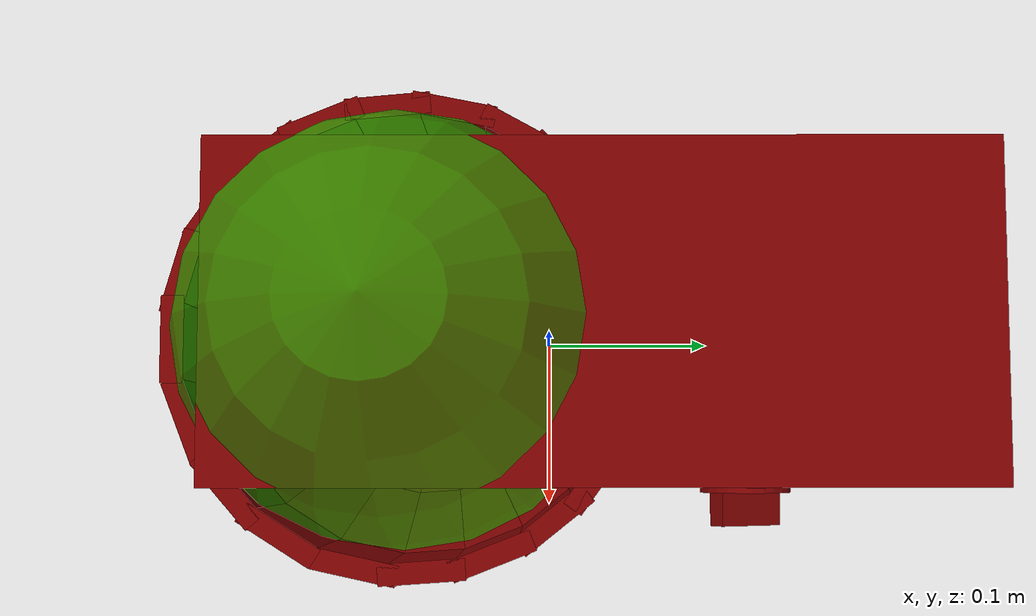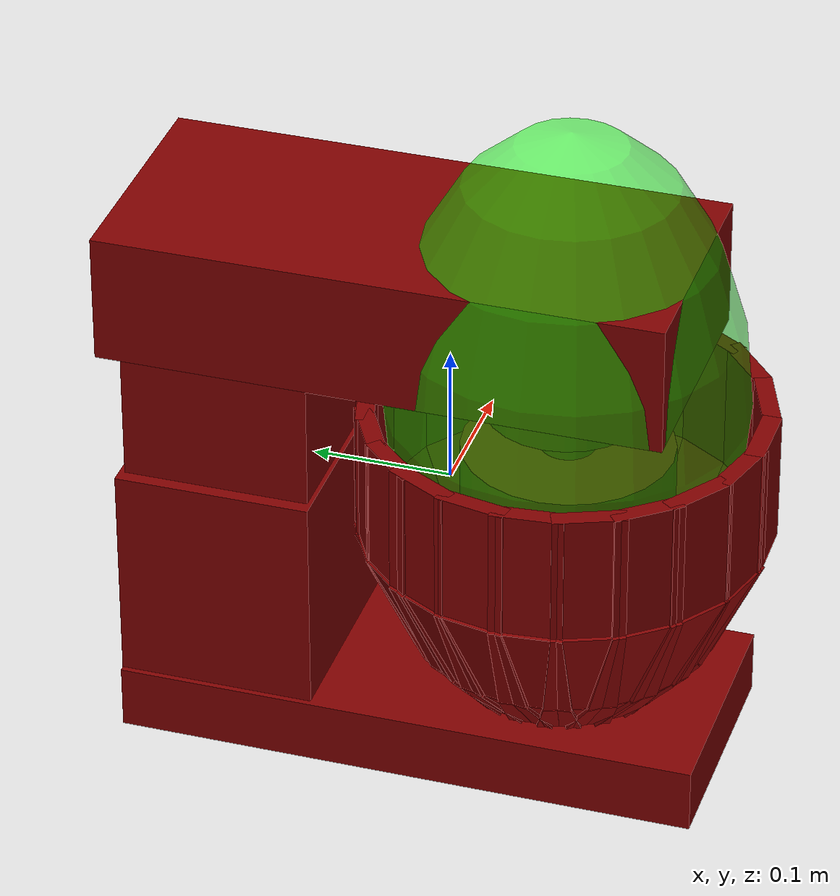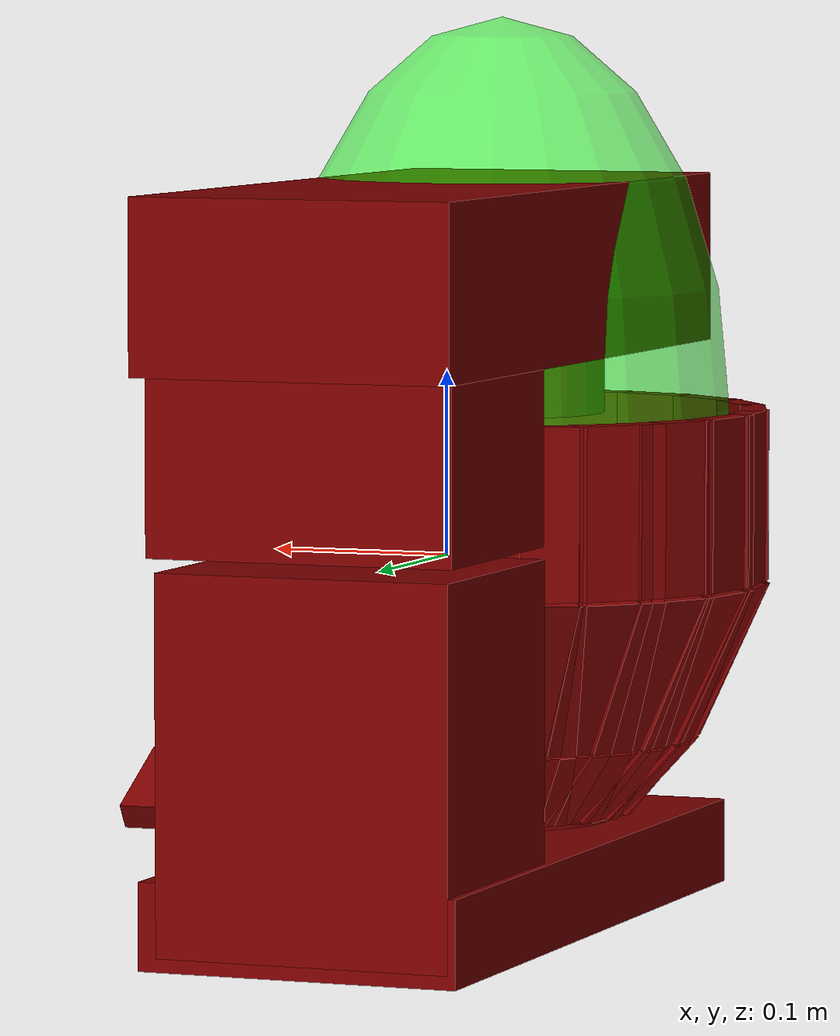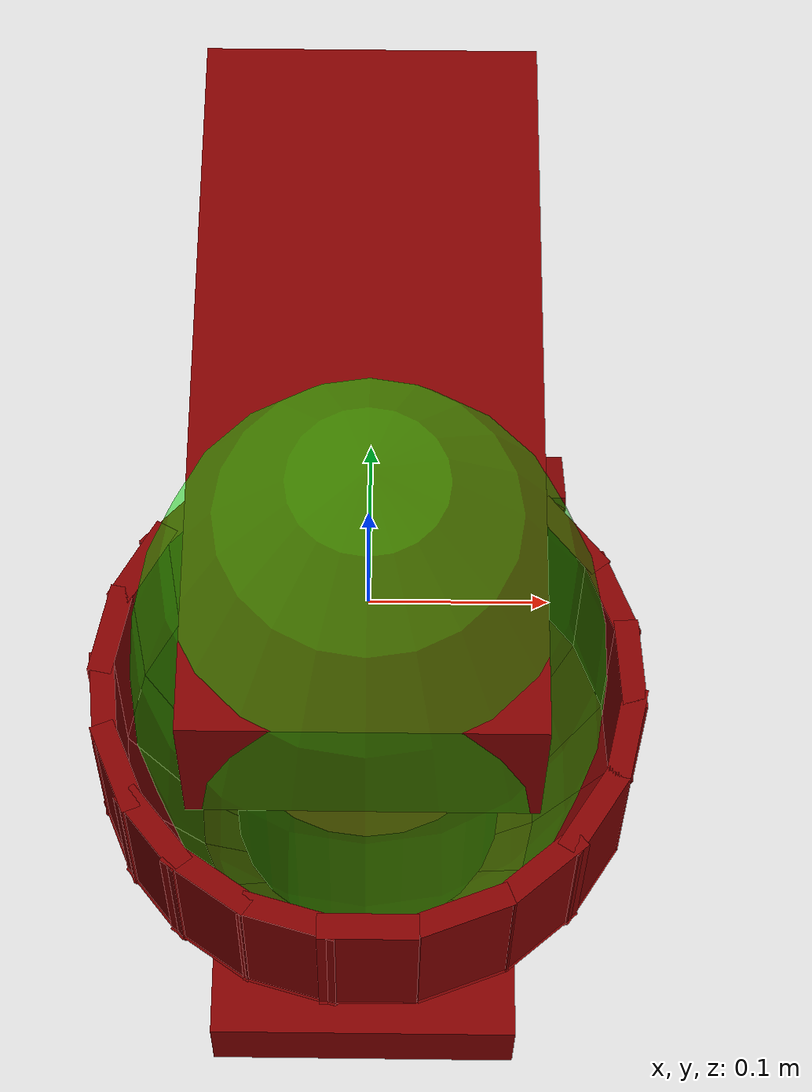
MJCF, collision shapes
<?xml version='1.0' encoding='UTF-8'?>
<mujoco model="model">
  <option timestep="0.002" gravity="0.0 0.0 -9.81"/>
  <compiler angle="radian"/>
  <asset>
    <mesh file="visuals/blender.obj" name="blender_vis"/>
    <mesh file="visuals/bowl.obj" name="bowl_vis"/>
    <mesh file="visuals/button_head_lock.obj" name="button_head_lock_vis"/>
    <mesh file="visuals/head.obj" name="head_vis"/>
    <mesh file="visuals/knob_speed.obj" name="knob_speed_vis"/>
    <mesh file="visuals/Body001.obj" name="Body001_vis"/>
    <texture file="visuals/T_BC001.png" name="Body001_material" type="2d"/>
    <material name="Body001_material" rgba="1 1 1 1.0" texture="Body001_material" shininess="0.1" specular="0.9"/>
    <material name="bowl_material" rgba="0.550000011920929 0.550000011920929 0.550000011920929 0.8367000222206116" shininess="0.1" specular="0.9"/>
    <texture file="visuals/T_BC001.png" name="head_material" type="2d"/>
    <material name="head_material" rgba="1 1 1 1.0" texture="head_material" shininess="0.1" specular="0.9"/>
    <texture file="visuals/T_BC001.png" name="blender_material" type="2d"/>
    <material name="blender_material" rgba="1 1 1 1.0" texture="blender_material" shininess="0.1" specular="0.9"/>
    <texture file="visuals/T_BC001.png" name="knob_speed_material" type="2d"/>
    <material name="knob_speed_material" rgba="1 1 1 1.0" texture="knob_speed_material" shininess="0.1" specular="0.9"/>
    <texture file="visuals/T_BC001.png" name="button_head_lock_material" type="2d"/>
    <material name="button_head_lock_material" rgba="1 1 1 1.0" texture="button_head_lock_material" shininess="0.1" specular="0.9"/>
  </asset>
  <default>
    <default class="visual">
      <geom conaffinity="0" contype="0" group="1" type="mesh"/>
    </default>
    <default class="collision">
      <geom group="0" rgba="0.5 0 0 0.5"/>
    </default>
    <default class="spawn">
      <geom group="0" rgba="1 1 1 0.5" contype="0" conaffinity="0"/>
      <site group="0" rgba="1 1 1 0.5"/>
    </default>
    <default class="region">
      <geom group="1" conaffinity="0" contype="0" rgba="0 1 0 0"/>
    </default>
  </default>
  <worldbody>
    <body>
      <body name="object">
        <geom mesh="Body001_vis" type="mesh" solimp="0.998 0.998 0.001" solref="0.001 1" friction="0.95 0.3 0.1" class="visual" material="Body001_material"/>
        <geom type="box" pos="-0.00126746 0.00839020 -0.17651898" size="0.08812396228313446 0.21000923216342926 0.02334430068731308" quat="1.0 0.0 0.0 0.0" class="collision"/>
        <geom type="box" pos="-0.00415192 0.14799933 -0.09234896" size="0.08092296123504639 0.07070896774530411 0.10016398131847382" quat="1.0 0.0 0.0 0.0" class="collision"/>
        <body name="bowl">
          <geom mesh="bowl_vis" type="mesh" solimp="0.998 0.998 0.001" solref="0.001 1" friction="0.95 0.3 0.1" class="visual" material="bowl_material"/>
          <geom type="box" pos="-0.00000143 0.05442361 0.02748097" size="0.02570570819079876 0.006458614952862263 0.046938538551330566" quat="1.0 0.0 0.0 0.0" class="collision"/>
          <geom type="box" pos="-0.00000143 0.03612551 -0.06124752" size="0.025705575942993164 0.006458582356572151 0.04693828150629997" quat="0.9767361283302307 -0.21444466710090637 4.761635417659452e-17 9.97033606715011e-25" class="collision"/>
          <geom type="box" pos="-0.00000143 -0.00226412 -0.12421586" size="0.025705575942993164 0.006458582356572151 0.028294935822486877" quat="0.9315438866615295 -0.36362892389297485 8.074186059746458e-17 2.0799648968929537e-24" class="collision"/>
          <geom type="box" pos="0.08073411 0.02841387 0.02748097" size="0.025705575942993164 0.006458581890910864 0.046938277781009674" quat="0.9518256187438965 0.0 0.0 -0.3066398501396179" class="collision"/>
          <geom type="box" pos="0.04764348 -0.01761339 -0.12421586" size="0.025705575942993164 0.006458581890910864 0.028294933959841728" quat="0.8866673111915588 -0.34611135721206665 0.11150312423706055 -0.2856484651565552" class="collision"/>
          <geom type="box" pos="0.07005285 0.01355683 -0.06124751" size="0.025705575942993164 0.006458581890910864 0.04693828150629997" quat="0.9296824932098389 -0.2041138857603073 0.06575727462768555 -0.29950621724128723" class="collision"/>
          <geom type="box" pos="0.11175636 -0.04015064 -0.06124753" size="0.025705577805638313 0.0064585828222334385 0.046938277781009674" quat="0.8067450523376465 -0.17712277173995972 0.1208885982632637 -0.550614058971405" class="collision"/>
          <geom type="box" pos="0.07600661 -0.05414057 -0.12421586" size="0.025705579668283463 0.006458581890910864 0.028294935822486877" quat="0.7694183588027954 -0.30034303665161133 0.20498785376548767 -0.5251375436782837" class="collision"/>
          <geom type="box" pos="0.12879616 -0.03348239 0.02748097" size="0.025705577805638313 0.006458582356572151 0.046938277781009674" quat="0.8259603381156921 0.0 0.0 -0.5637282133102417" class="collision"/>
          <geom type="box" pos="0.13503937 -0.11377156 0.02748097" size="0.025705577805638313 0.006458582356572151 0.046938277781009674" quat="0.6260642409324646 0.0 0.0 -0.7797715067863464" class="collision"/>
          <geom type="box" pos="0.07969095 -0.10152206 -0.12421586" size="0.025705577805638313 0.006458581425249577 0.028294933959841728" quat="0.583206295967102 -0.2276550829410553 0.2835474908351898 -0.7263913750648499" class="collision"/>
          <geom type="box" pos="0.11717357 -0.10981756 -0.06124752" size="0.025705577805638313 0.006458581425249577 0.04693828150629997" quat="0.611499547958374 -0.13425613939762115 0.16721783578395844 -0.7616310119628906" class="collision"/>
          <geom type="box" pos="0.07825549 -0.17487025 -0.06124752" size="0.025705577805638313 0.0064585828222334385 0.046938277781009674" quat="0.3396555781364441 -0.07457218319177628 0.20106098055839539 -0.9157770276069641" class="collision"/>
          <geom type="box" pos="0.05322221 -0.14576530 -0.12421586" size="0.025705577805638313 0.006458581890910864 0.028294933959841728" quat="0.3239401578903198 -0.12645037472248077 0.3409345746040344 -0.8734052181243896" class="collision"/>
          <geom type="box" pos="0.09018741 -0.18874290 0.02748097" size="0.025705577805638313 0.006458582356572151 0.046938277781009674" quat="0.3477453589439392 0.0 0.0 -0.9375889897346497" class="collision"/>
          <geom type="box" pos="0.00191418 -0.22218007 0.02748097" size="0.025792662054300308 0.00681401276960969 0.046938471496105194" quat="1.0 0.0 0.0 0.0" class="collision"/>
          <geom type="box" pos="0.00112905 -0.16549778 -0.12421586" size="0.025705575942993164 0.006458581890910864 0.028294933959841728" quat="0.006451169960200787 -0.0025182198733091354 0.36362025141716003 -0.9315215349197388" class="collision"/>
          <geom type="box" pos="0.00166075 -0.20388371 -0.06124753" size="0.025705575942993164 0.006458581890910864 0.046938277781009674" quat="0.00676413718611002 -0.0014850822044536471 0.21443955600261688 -0.976712703704834" class="collision"/>
          <geom type="box" pos="-0.06851569 -0.18241545 -0.06124752" size="0.025705575942993164 0.006458580959588289 0.04693828150629997" quat="0.2921915054321289 -0.06415130198001862 -0.20462433993816376 0.9320073127746582" class="collision"/>
          <geom type="box" pos="-0.04659893 -0.15089691 -0.12421586" size="0.025705575942993164 0.006458581425249577 0.02829493209719658" quat="0.27867206931114197 -0.10877995938062668 -0.3469770550727844 0.8888845443725586" class="collision"/>
          <geom type="box" pos="-0.07896213 -0.19743854 0.02748097" size="0.025705575942993164 0.006458581890910864 0.046938277781009674" quat="0.29915091395378113 0.0 0.0 0.9542058110237122" class="collision"/>
          <geom type="box" pos="-0.12807810 -0.13609204 0.02748097" size="0.025705574080348015 0.006458581425249577 0.046938277781009674" quat="0.5579116940498352 0.0 0.0 0.829900324344635" class="collision"/>
          <geom type="box" pos="-0.07558402 -0.11469415 -0.12421586" size="0.025705577805638313 0.006458581890910864 0.028294935822486877" quat="0.5197193622589111 -0.2028728574514389 -0.3017757833003998 0.7730884552001953" class="collision"/>
          <geom type="box" pos="-0.11113367 -0.12918505 -0.06124753" size="0.025705577805638313 0.006458581890910864 0.046938277781009674" quat="0.5449326634407043 -0.11964122951030731 -0.17796771228313446 0.8105935454368591" class="collision"/>
          <geom type="box" pos="-0.11776348 -0.06076387 -0.06124753" size="0.025705577805638313 0.006458581425249577 0.046938277781009674" quat="0.7542586326599121 -0.16559924185276031 -0.1362476497888565 0.6205702424049377" class="collision"/>
          <geom type="box" pos="-0.08009305 -0.06815994 -0.12421586" size="0.025705577805638313 0.006458582356572151 0.028294933959841728" quat="0.7193601727485657 -0.28080278635025024 -0.23103196918964386 0.5918571949005127" class="collision"/>
          <geom type="box" pos="-0.13571878 -0.05723858 0.02748097" size="0.025705577805638313 0.006458582356572151 0.046938277781009674" quat="0.7722236514091492 0.0 0.0 0.6353508234024048" class="collision"/>
          <geom type="box" pos="-0.10132942 0.01025261 0.02748097" size="0.025705577805638313 0.006458582356572151 0.046938277781009674" quat="0.9166881442070007 0.0 0.0 0.39960339665412903" class="collision"/>
          <geom type="box" pos="-0.05979865 -0.02833101 -0.12421586" size="0.025705575942993164 0.006458581890910864 0.028294933959841728" quat="0.853935182094574 -0.33333441615104675 -0.14530742168426514 0.3722480535507202" class="collision"/>
          <geom type="box" pos="-0.08792380 -0.00220171 -0.06124754" size="0.025705575942993164 0.006458582356572151 0.046938277781009674" quat="0.8953624367713928 -0.19657891988754272 -0.08569283783435822 0.39030706882476807" class="collision"/>
          <geom type="box" pos="-0.05726711 0.02158136 -0.06124754" size="0.025705577805638313 0.006458581890910864 0.04693828523159027" quat="0.9466809034347534 -0.207846000790596 -0.052787940949201584 0.2404344528913498" class="collision"/>
          <geom type="box" pos="-0.03894861 -0.01215579 -0.12421586" size="0.025705575942993164 0.006458581425249577 0.028294933959841728" quat="0.9028792977333069 -0.35243967175483704 -0.08951130509376526 0.2293098419904709" class="collision"/>
          <geom type="box" pos="-0.06599844 0.03766192 0.02748097" size="0.025705575942993164 0.006458581890910864 0.046938277781009674" quat="0.9692289233207703 0.0 0.0 0.24616104364395142" class="collision"/>
          <geom type="box" pos="-0.03438178 0.05008237 0.02748097" size="0.025705579668283463 0.0064585828222334385 0.046938277781009674" quat="0.9921219944953918 0.0 0.0 0.12527567148208618" class="collision"/>
          <geom type="box" pos="-0.02029050 -0.00482605 -0.12421586" size="0.025705577805638313 0.006458581890910864 0.028294937685132027" quat="0.9242050647735596 -0.36076441407203674 -0.04555392265319824 0.11669988930225372" class="collision"/>
          <geom type="box" pos="-0.02983330 0.03235860 -0.06124755" size="0.025705575942993164 0.006458581890910864 0.04693828150629997" quat="0.9690413475036621 -0.21275539696216583 -0.026864733546972275 0.12236134707927704" class="collision"/>
          <geom type="box" pos="0.03323115 0.03143244 -0.06124753" size="0.025705574080348015 0.006458582356572151 0.046938277781009674" quat="0.9671401381492615 -0.21233786642551422 0.02998599037528038 -0.13657774031162262" class="collision"/>
          <geom type="box" pos="0.02260053 -0.00545593 -0.12421586" size="0.025705575942993164 0.006458581890910864 0.028294933959841728" quat="0.9223918318748474 -0.36005645990371704 0.050846535712480545 -0.13025857508182526" class="collision"/>
          <geom type="box" pos="0.03829817 0.04901499 0.02748097" size="0.025705575942993164 0.006458581890910864 0.046938277781009674" quat="0.9901754260063171 0.0 0.0 -0.13983088731765747" class="collision"/>
          <geom type="box" pos="0.10800341 0.00251068 0.02748097" size="0.025705575942993164 0.006458581890910864 0.046938277781009674" quat="0.9012930989265442 0.0 0.0 -0.4332098364830017" class="collision"/>
          <geom type="box" pos="0.06373606 -0.03289978 -0.12421586" size="0.025705575942993164 0.006458581890910864 0.028294933959841728" quat="0.8395941257476807 -0.3277362585067749 0.1575275957584381 -0.40355387330055237" class="collision"/>
          <geom type="box" pos="0.09371443 -0.00891937 -0.06124753" size="0.025705575942993164 0.006458582356572151 0.046938277781009674" quat="0.8803255558013916 -0.1932775378227234 0.09289952367544174 -0.4231316149234772" class="collision"/>
          <geom type="box" pos="0.11972894 -0.07569171 -0.06124754" size="0.025705575942993164 0.006458581890910864 0.04693828150629997" quat="0.7138432264328003 -0.15672601759433746 0.14636774361133575 -0.6666643023490906" class="collision"/>
          <geom type="box" pos="0.08142889 -0.07831257 -0.12421586" size="0.025705575942993164 0.006458581890910864 0.028294935822486877" quat="0.6808146834373474 -0.26575663685798645 0.24819232523441315 -0.6358186602592468" class="collision"/>
          <geom type="box" pos="0.13798435 -0.07444247 0.02748097" size="0.025705577805638313 0.006458582356572151 0.046938277781009674" quat="0.7308457493782043 0.0 0.0 -0.6825426816940308" class="collision"/>
          <geom type="box" pos="0.11675904 -0.15802142 0.02748097" size="0.025705575942993164 0.006458581890910864 0.046938277781009674" quat="0.48165175318717957 0.0 0.0 -0.876362681388855" class="collision"/>
          <geom type="box" pos="0.06890309 -0.12763545 -0.12421586" size="0.025705575942993164 0.006458581890910864 0.028294933959841728" quat="0.4486798346042633 -0.1751425564289093 0.31867077946662903 -0.8163702487945557" class="collision"/>
          <geom type="box" pos="0.10131172 -0.14821318 -0.06124755" size="0.025705575942993164 0.006458581890910864 0.04693828150629997" quat="0.4704466760158539 -0.10328767448663712 0.18793144822120667 -0.8559750914573669" class="collision"/>
          <geom type="box" pos="0.04348311 -0.19574004 -0.06124756" size="0.025705574080348015 0.006458581890910864 0.046938274055719376" quat="0.18004021048545837 -0.03952828422188759 0.21077024936676025 -0.9599994421005249" class="collision"/>
          <geom type="box" pos="0.02957303 -0.15995917 -0.12421586" size="0.025705574080348015 0.006458582356572151 0.028294935822486877" quat="0.17170999944210052 -0.06702714413404465 0.3573980927467346 -0.9155815839767456" class="collision"/>
          <geom type="box" pos="0.05011324 -0.21279475 0.02748097" size="0.025705574080348015 0.006458581425249577 0.046938277781009674" quat="0.18432840704917908 0.0 0.0 -0.9828647375106812" class="collision"/>
          <geom type="box" pos="-0.03782410 -0.21692124 0.02748097" size="0.025705577805638313 0.006458582356572151 0.046938277781009674" quat="0.1380549669265747 0.0 0.0 0.9904245734214783" class="collision"/>
          <geom type="box" pos="-0.02232192 -0.16239434 -0.12421586" size="0.025705577805638313 0.006458582356572151 0.028294935822486877" quat="0.12860426306724548 -0.05020077899098396 -0.36014705896377563 0.9226239323616028" class="collision"/>
          <geom type="box" pos="-0.03282017 -0.19932061 -0.06124755" size="0.025705577805638313 0.0064585828222334385 0.04693828150629997" quat="0.13484327495098114 -0.029605163261294365 -0.21239140629768372 0.9673834443092346" class="collision"/>
          <geom type="box" pos="-0.09377891 -0.15877324 -0.06124753" size="0.025705575942993164 0.006458581890910864 0.046938277781009674" quat="0.42349377274513245 -0.0929790511727333 -0.19323931634426117 0.8801513910293579" class="collision"/>
          <geom type="box" pos="-0.06378081 -0.13481748 -0.12421586" size="0.025705575942993164 0.006458581890910864 0.028294933959841728" quat="0.40389928221702576 -0.15766246616840363 -0.3276715576648712 0.8394279479980469" class="collision"/>
          <geom type="box" pos="-0.10807728 -0.17019155 0.02748097" size="0.025705575942993164 0.006458581890910864 0.046938277781009674" quat="0.43358051776885986 0.0 0.0 0.901114821434021" class="collision"/>
          <geom type="box" pos="-0.13774087 -0.09641782 0.02748097" size="0.025705575942993164 0.006458581890910864 0.046938277781009674" quat="0.6743085384368896 0.0 0.0 0.73844975233078" class="collision"/>
          <geom type="box" pos="-0.08128636 -0.09128102 -0.12421586" size="0.025705574080348015 0.006458582356572151 0.028294933959841728" quat="0.6281480193138123 -0.24519814550876617 -0.26852166652679443 0.6878982782363892" class="collision"/>
          <geom type="box" pos="-0.11951803 -0.09475974 -0.06124753" size="0.025705575942993164 0.006458581890910864 0.046938277781009674" quat="0.6586214900016785 -0.14460185170173645 -0.1583566665649414 0.7212705612182617" class="collision"/>
          <geom type="box" pos="-0.10511354 -0.02597178 -0.06124753" size="0.025705577805638313 0.006458581890910864 0.04693828150629997" quat="0.8409484624862671 -0.1846322864294052 -0.10907559096813202 0.4968089163303375" class="collision"/>
          <geom type="box" pos="-0.07148966 -0.04449738 -0.12421586" size="0.025705575942993164 0.006458582356572151 0.028294935822486877" quat="0.8020390272140503 -0.31307661533355713 -0.184956893324852 0.47382208704948425" class="collision"/>
          <geom type="box" pos="-0.12114011 -0.01714170 0.02748097" size="0.025705575942993164 0.006458581890910864 0.046938277781009674" quat="0.8609783053398132 0.0 0.0 0.5086416602134705" class="collision"/>
          <geom type="cylinder" pos="-0.00019253 -0.08355447 -0.15055209" size="0.06042349338531494 0.0023591474164277315" quat="1.0 0.0 0.0 0.0" class="collision"/>
          <geom name="reg_bowl" type="ellipsoid" pos="0.00041978 -0.08429230 0.07430001" size="0.12482338398694992 0.12745635211467743 0.21492250263690948" rgba="0 1 0 0.5" class="region"/>
        </body>
        <body name="head">
          <joint axis="-1.0 0.0 0.0" pos="-0.00000087 0.20884656 0.01501960" limited="true" name="head_joint" range="0.0 1.5707963267948966" type="hinge" damping="1" frictionloss="1" armature=".01" stiffness="0.05"/>
          <geom mesh="head_vis" type="mesh" solimp="0.998 0.998 0.001" solref="0.001 1" friction="0.95 0.3 0.1" class="visual" material="head_material"/>
          <geom type="box" pos="-0.00126746 0.02643728 0.15521604" size="0.08812396228313446 0.20114971697330475 0.04650690034031868" quat="1.0 0.0 0.0 0.0" class="collision"/>
          <geom type="cylinder" pos="0.00064070 -0.08301189 0.09464936" size="0.05742409825325012 0.022142428904771805" quat="1.0 0.0 0.0 0.0" class="collision"/>
          <geom type="box" pos="0.00024525 0.14424007 0.06372327" size="0.08468689769506454 0.06694968789815903 0.04944663122296333" quat="1.0 0.0 0.0 0.0" class="collision"/>
          <body name="blender">
            <joint axis="0.0 0.0 1.0" pos="-0.00005875 -0.08408670 -0.02183717" limited="false" name="blender_joint" range="0 360" type="hinge" damping="1" frictionloss="1" armature=".01" stiffness="0.05"/>
            <geom mesh="blender_vis" type="mesh" solimp="0.998 0.998 0.001" solref="0.001 1" friction="0.95 0.3 0.1" class="visual" material="blender_material"/>
            <geom type="cylinder" pos="0.00029253 -0.08372326 0.05592075" size="0.009270640090107918 0.014159394428133965" quat="1.0 0.0 0.0 0.0" class="collision"/>
            <geom type="cylinder" pos="0.00029253 -0.08492508 0.03801031" size="0.019681351259350777 0.011102014221251011" quat="1.0 0.0 0.0 0.0" class="collision"/>
            <geom type="cylinder" pos="0.00029253 -0.08492508 -0.02540624" size="0.07535043358802795 0.06729623675346375" quat="1.0 0.0 0.0 0.0" class="collision"/>
          </body>
        </body>
        <body name="knob_speed">
          <joint axis="-1.0 0.0 0.0" pos="0.09815900 0.14157000 -0.11464000" limited="true" name="knob_speed_joint" range="0.0 4.886921905584122" type="hinge" damping="0.05" armature="0.001"/>
          <geom mesh="knob_speed_vis" type="mesh" solimp="0.998 0.998 0.001" solref="0.001 1" friction="0.95 0.3 0.1" class="visual" material="knob_speed_material"/>
          <geom type="cylinder" pos="0.09396894 0.14133257 -0.11444008" size="0.03240782395005226 0.0019367868080735207" quat="0.7071068286895752 -0.0 0.7071067690849304 0.0" class="collision"/>
          <geom class="collision" type="box" pos="0.10767674 0.14132920 -0.11437830" size="0.011869127862155437 0.0072041647508740425 0.02584173157811165" quat="0.8660253882408142 0.5 0.0 0.0" name="knob_speed_main"/>
        </body>
        <body name="button_head_lock">
          <joint axis="-1.0 0.0 0.0" pos="0.08700227 0.14049016 -0.00504776" limited="true" name="button_head_lock_joint" range="0.0 0.002" type="slide" damping="1" frictionloss="1" armature=".01" stiffness="0.05"/>
          <geom mesh="button_head_lock_vis" type="mesh" solimp="0.998 0.998 0.001" solref="0.001 1" friction="0.95 0.3 0.1" class="visual" material="button_head_lock_material"/>
          <geom class="collision" type="box" pos="0.08755786 0.14023754 -0.00521260" size="0.0030753957107663155 0.014574013650417328 0.006572891026735306" quat="1.0 0.0 0.0 0.0" name="button_head_lock_main"/>
        </body>
        <geom class="region" name="reg_main" type="box" pos="0.0028560750000000065 0.013543659999999999 1.4999999992104662e-08" size="0.088290025 0.21504594 0.200999645"/>
      </body>
    </body>
  </worldbody>
  <actuator>
    <motor name="head_joint_actuator" joint="head_joint" gear="10"/>
    <motor name="knob_speed_joint_actuator" joint="knob_speed_joint" gear="10"/>
    <motor name="button_head_lock_joint_actuator" joint="button_head_lock_joint" gear="0.5"/>
    <motor name="blender_joint_actuator" joint="blender_joint" gear="0.5"/>
  </actuator>
</mujoco>
